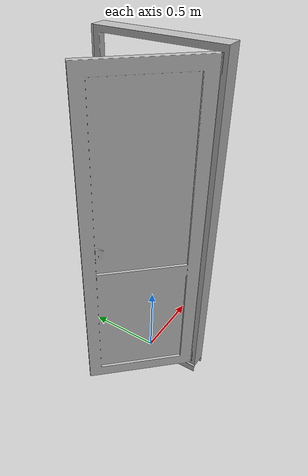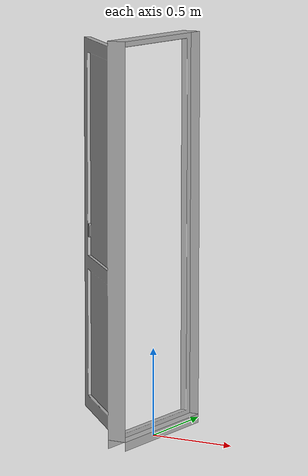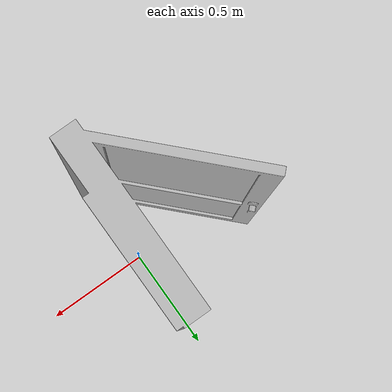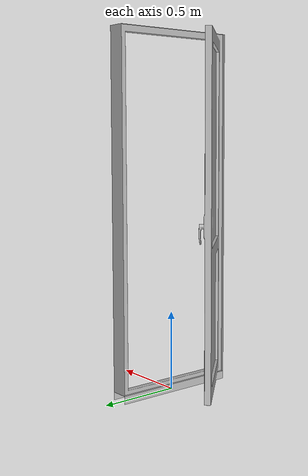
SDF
<?xml version='1.0'?>
<sdf version='1.4'>
  <model name='247'>
    <pose>0 0 0 0 0 0</pose>
    <static>true</static>
    <link name='link'>
      <collision name='collision'>
        <pose>0 0 0 0 0 0</pose>
        <geometry>
          <box>
            <size>0.61 0.8 2</size>
          </box>
        </geometry>
      </collision>
      <visual name='visual'>
        <pose>0 0 0 0 0 0</pose>
        <geometry>
          <mesh><uri>model://247/247.dae</uri></mesh>
        </geometry>
      </visual>
    </link>
  </model>
</sdf>
